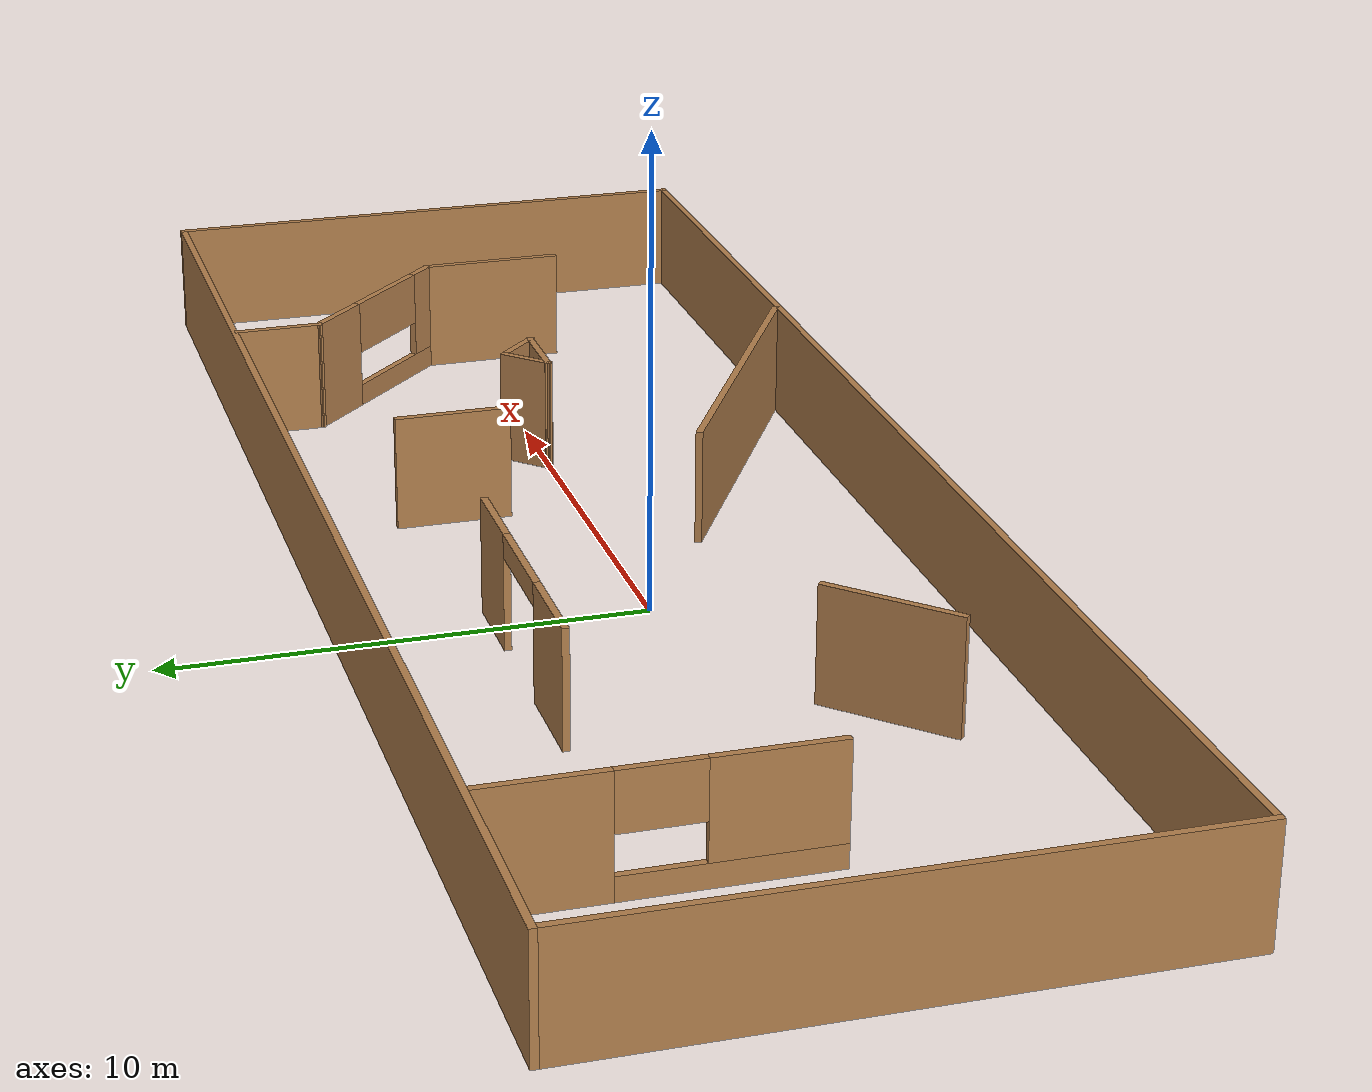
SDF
<?xml version='1.0'?>
<sdf version='1.7'>
  <model name='mapa_02'>
    <pose>1.95135 0.172168 0 0 -0 0</pose>
    <link name='Wall_10'>
      <collision name='Wall_10_Collision'>
        <geometry>
          <box>
            <size>34.5 0.15 2.5</size>
          </box>
        </geometry>
        <pose>0 0 1.25 0 -0 0</pose>
      </collision>
      <visual name='Wall_10_Visual'>
        <pose>0 0 1.25 0 -0 0</pose>
        <geometry>
          <box>
            <size>34.5 0.15 2.5</size>
          </box>
        </geometry>
        <material>
          <script>
            <uri>file://media/materials/scripts/gazebo.material</uri>
            <name>Gazebo/Wood</name>
          </script>
          <ambient>1 1 1 1</ambient>
        </material>
        <meta>
          <layer>0</layer>
        </meta>
      </visual>
      <pose>-0 6.175 0 0 -0 3.14159</pose>
    </link>
    <link name='Wall_11'>
      <collision name='Wall_11_Collision'>
        <geometry>
          <box>
            <size>12.5 0.15 2.5</size>
          </box>
        </geometry>
        <pose>0 0 1.25 0 -0 0</pose>
      </collision>
      <visual name='Wall_11_Visual'>
        <pose>0 0 1.25 0 -0 0</pose>
        <geometry>
          <box>
            <size>12.5 0.15 2.5</size>
          </box>
        </geometry>
        <material>
          <script>
            <uri>file://media/materials/scripts/gazebo.material</uri>
            <name>Gazebo/Wood</name>
          </script>
          <ambient>1 1 1 1</ambient>
        </material>
        <meta>
          <layer>0</layer>
        </meta>
      </visual>
      <pose>-17.175 -0 0 0 -0 -1.5708</pose>
    </link>
    <link name='Wall_13'>
      <pose>-12.7062 2.84089 0 0 -0 -1.5708</pose>
      <visual name='Wall_13_Visual_0'>
        <pose>-2.08779 0 1.25 0 -0 0</pose>
        <geometry>
          <box>
            <size>2.57442 0.15 2.5</size>
          </box>
        </geometry>
        <material>
          <script>
            <uri>file://media/materials/scripts/gazebo.material</uri>
            <name>Gazebo/Wood</name>
          </script>
          <ambient>1 1 1 1</ambient>
        </material>
        <meta>
          <layer>0</layer>
        </meta>
      </visual>
      <collision name='Wall_13_Collision_0'>
        <geometry>
          <box>
            <size>2.57442 0.15 2.5</size>
          </box>
        </geometry>
        <pose>-2.08779 0 1.25 0 -0 0</pose>
      </collision>
      <visual name='Wall_13_Visual_1'>
        <pose>1.28721 0 0.25 0 -0 0</pose>
        <geometry>
          <box>
            <size>4.17558 0.15 0.5</size>
          </box>
        </geometry>
        <material>
          <script>
            <uri>file://media/materials/scripts/gazebo.material</uri>
            <name>Gazebo/Wood</name>
          </script>
          <ambient>1 1 1 1</ambient>
        </material>
        <meta>
          <layer>0</layer>
        </meta>
      </visual>
      <collision name='Wall_13_Collision_1'>
        <geometry>
          <box>
            <size>4.17558 0.15 0.5</size>
          </box>
        </geometry>
        <pose>1.28721 0 0.25 0 -0 0</pose>
      </collision>
      <visual name='Wall_13_Visual_2'>
        <pose>2.11281 0 1.5 0 -0 0</pose>
        <geometry>
          <box>
            <size>2.52437 0.15 2</size>
          </box>
        </geometry>
        <material>
          <script>
            <uri>file://media/materials/scripts/gazebo.material</uri>
            <name>Gazebo/Wood</name>
          </script>
          <ambient>1 1 1 1</ambient>
        </material>
        <meta>
          <layer>0</layer>
        </meta>
      </visual>
      <collision name='Wall_13_Collision_2'>
        <geometry>
          <box>
            <size>2.52437 0.15 2</size>
          </box>
        </geometry>
        <pose>2.11281 0 1.5 0 -0 0</pose>
      </collision>
      <visual name='Wall_13_Visual_3'>
        <pose>0.025025 0 1.9 0 -0 0</pose>
        <geometry>
          <box>
            <size>1.65121 0.15 1.2</size>
          </box>
        </geometry>
        <material>
          <script>
            <uri>file://media/materials/scripts/gazebo.material</uri>
            <name>Gazebo/Wood</name>
          </script>
          <ambient>1 1 1 1</ambient>
        </material>
        <meta>
          <layer>0</layer>
        </meta>
      </visual>
      <collision name='Wall_13_Collision_3'>
        <geometry>
          <box>
            <size>1.65121 0.15 1.2</size>
          </box>
        </geometry>
        <pose>0.025025 0 1.9 0 -0 0</pose>
      </collision>
    </link>
    <link name='Wall_15'>
      <pose>-4.20313 3.00207 0 0 -0 0</pose>
      <visual name='Wall_15_Visual_0'>
        <pose>-2.08224 0 1.25 0 -0 0</pose>
        <geometry>
          <box>
            <size>2.08552 0.15 2.5</size>
          </box>
        </geometry>
        <material>
          <script>
            <uri>file://media/materials/scripts/gazebo.material</uri>
            <name>Gazebo/Wood</name>
          </script>
          <ambient>1 1 1 1</ambient>
        </material>
        <meta>
          <layer>0</layer>
        </meta>
      </visual>
      <collision name='Wall_15_Collision_0'>
        <geometry>
          <box>
            <size>2.08552 0.15 2.5</size>
          </box>
        </geometry>
        <pose>-2.08224 0 1.25 0 -0 0</pose>
      </collision>
      <visual name='Wall_15_Visual_1'>
        <pose>2.19766 0 1.25 0 -0 0</pose>
        <geometry>
          <box>
            <size>1.85467 0.15 2.5</size>
          </box>
        </geometry>
        <material>
          <script>
            <uri>file://media/materials/scripts/gazebo.material</uri>
            <name>Gazebo/Wood</name>
          </script>
          <ambient>1 1 1 1</ambient>
        </material>
        <meta>
          <layer>0</layer>
        </meta>
      </visual>
      <collision name='Wall_15_Collision_1'>
        <geometry>
          <box>
            <size>1.85467 0.15 2.5</size>
          </box>
        </geometry>
        <pose>2.19766 0 1.25 0 -0 0</pose>
      </collision>
      <visual name='Wall_15_Visual_2'>
        <pose>0.115424 0 2.25 0 -0 0</pose>
        <geometry>
          <box>
            <size>2.30981 0.15 0.5</size>
          </box>
        </geometry>
        <material>
          <script>
            <uri>file://media/materials/scripts/gazebo.material</uri>
            <name>Gazebo/Wood</name>
          </script>
          <ambient>1 1 1 1</ambient>
        </material>
        <meta>
          <layer>0</layer>
        </meta>
      </visual>
      <collision name='Wall_15_Collision_2'>
        <geometry>
          <box>
            <size>2.30981 0.15 0.5</size>
          </box>
        </geometry>
        <pose>0.115424 0 2.25 0 -0 0</pose>
      </collision>
    </link>
    <link name='Wall_17'>
      <collision name='Wall_17_Collision'>
        <geometry>
          <box>
            <size>3 0.15 2.5</size>
          </box>
        </geometry>
        <pose>0 0 1.25 0 -0 0</pose>
      </collision>
      <visual name='Wall_17_Visual'>
        <pose>0 0 1.25 0 -0 0</pose>
        <geometry>
          <box>
            <size>3 0.15 2.5</size>
          </box>
        </geometry>
        <material>
          <script>
            <uri>file://media/materials/scripts/gazebo.material</uri>
            <name>Gazebo/Wood</name>
          </script>
          <ambient>1 1 1 1</ambient>
        </material>
        <meta>
          <layer>0</layer>
        </meta>
      </visual>
      <pose>-7.76171 -3.11916 0 0 -0 0.785398</pose>
    </link>
    <link name='Wall_19'>
      <collision name='Wall_19_Collision'>
        <geometry>
          <box>
            <size>1.25 0.15 2.5</size>
          </box>
        </geometry>
        <pose>0 0 1.25 0 -0 0</pose>
      </collision>
      <visual name='Wall_19_Visual'>
        <pose>0 0 1.25 0 -0 0</pose>
        <geometry>
          <box>
            <size>1.25 0.15 2.5</size>
          </box>
        </geometry>
        <material>
          <script>
            <uri>file://media/materials/scripts/gazebo.material</uri>
            <name>Gazebo/Wood</name>
          </script>
          <ambient>1 1 1 1</ambient>
        </material>
        <meta>
          <layer>0</layer>
        </meta>
      </visual>
      <pose>6.27628 0.252154 0 0 -0 0.785398</pose>
    </link>
    <link name='Wall_22'>
      <collision name='Wall_22_Collision'>
        <geometry>
          <box>
            <size>1.25 0.15 2.5</size>
          </box>
        </geometry>
        <pose>0 0 1.25 0 -0 0</pose>
      </collision>
      <visual name='Wall_22_Visual'>
        <pose>0 0 1.25 0 -0 0</pose>
        <geometry>
          <box>
            <size>1.25 0.15 2.5</size>
          </box>
        </geometry>
        <material>
          <script>
            <uri>file://media/materials/scripts/gazebo.material</uri>
            <name>Gazebo/Wood</name>
          </script>
          <ambient>1 1 1 1</ambient>
        </material>
        <meta>
          <layer>0</layer>
        </meta>
      </visual>
      <pose>7.0541 0.252154 0 0 -0 -0.785398</pose>
    </link>
    <link name='Wall_23'>
      <collision name='Wall_23_Collision'>
        <geometry>
          <box>
            <size>1.70564 0.15 2.5</size>
          </box>
        </geometry>
        <pose>0 0 1.25 0 -0 0</pose>
      </collision>
      <visual name='Wall_23_Visual'>
        <pose>0 0 1.25 0 -0 0</pose>
        <geometry>
          <box>
            <size>1.70564 0.15 2.5</size>
          </box>
        </geometry>
        <material>
          <script>
            <uri>file://media/materials/scripts/gazebo.material</uri>
            <name>Gazebo/Wood</name>
          </script>
          <ambient>1 1 1 1</ambient>
        </material>
        <meta>
          <layer>0</layer>
        </meta>
      </visual>
      <pose>6.66519 -0.136755 0 0 -0 3.14159</pose>
    </link>
    <link name='Wall_25'>
      <pose>11.2909 2.62593 0 0 -0 -0.785398</pose>
      <visual name='Wall_25_Visual_0'>
        <pose>-1.55002 0 1.25 0 -0 0</pose>
        <geometry>
          <box>
            <size>1.64996 0.15 2.5</size>
          </box>
        </geometry>
        <material>
          <script>
            <uri>file://media/materials/scripts/gazebo.material</uri>
            <name>Gazebo/Wood</name>
          </script>
          <ambient>1 1 1 1</ambient>
        </material>
        <meta>
          <layer>0</layer>
        </meta>
      </visual>
      <collision name='Wall_25_Collision_0'>
        <geometry>
          <box>
            <size>1.64996 0.15 2.5</size>
          </box>
        </geometry>
        <pose>-1.55002 0 1.25 0 -0 0</pose>
      </collision>
      <visual name='Wall_25_Visual_1'>
        <pose>0.824982 0 0.25 0 -0 0</pose>
        <geometry>
          <box>
            <size>3.10004 0.15 0.5</size>
          </box>
        </geometry>
        <material>
          <script>
            <uri>file://media/materials/scripts/gazebo.material</uri>
            <name>Gazebo/Wood</name>
          </script>
          <ambient>1 1 1 1</ambient>
        </material>
        <meta>
          <layer>0</layer>
        </meta>
      </visual>
      <collision name='Wall_25_Collision_1'>
        <geometry>
          <box>
            <size>3.10004 0.15 0.5</size>
          </box>
        </geometry>
        <pose>0.824982 0 0.25 0 -0 0</pose>
      </collision>
      <visual name='Wall_25_Visual_2'>
        <pose>1.99616 0 1.5 0 -0 0</pose>
        <geometry>
          <box>
            <size>0.757683 0.15 2</size>
          </box>
        </geometry>
        <material>
          <script>
            <uri>file://media/materials/scripts/gazebo.material</uri>
            <name>Gazebo/Wood</name>
          </script>
          <ambient>1 1 1 1</ambient>
        </material>
        <meta>
          <layer>0</layer>
        </meta>
      </visual>
      <collision name='Wall_25_Collision_2'>
        <geometry>
          <box>
            <size>0.757683 0.15 2</size>
          </box>
        </geometry>
        <pose>1.99616 0 1.5 0 -0 0</pose>
      </collision>
      <visual name='Wall_25_Visual_3'>
        <pose>0.44614 0 1.9 0 -0 0</pose>
        <geometry>
          <box>
            <size>2.34235 0.15 1.2</size>
          </box>
        </geometry>
        <material>
          <script>
            <uri>file://media/materials/scripts/gazebo.material</uri>
            <name>Gazebo/Wood</name>
          </script>
          <ambient>1 1 1 1</ambient>
        </material>
        <meta>
          <layer>0</layer>
        </meta>
      </visual>
      <collision name='Wall_25_Collision_3'>
        <geometry>
          <box>
            <size>2.34235 0.15 1.2</size>
          </box>
        </geometry>
        <pose>0.44614 0 1.9 0 -0 0</pose>
      </collision>
    </link>
    <link name='Wall_26'>
      <collision name='Wall_26_Collision'>
        <geometry>
          <box>
            <size>3.25 0.15 2.5</size>
          </box>
        </geometry>
        <pose>0 0 1.25 0 -0 0</pose>
      </collision>
      <visual name='Wall_26_Visual'>
        <pose>0 0 1.25 0 -0 0</pose>
        <geometry>
          <box>
            <size>3.25 0.15 2.5</size>
          </box>
        </geometry>
        <material>
          <script>
            <uri>file://media/materials/scripts/gazebo.material</uri>
            <name>Gazebo/Wood</name>
          </script>
          <ambient>1 1 1 1</ambient>
        </material>
        <meta>
          <layer>0</layer>
        </meta>
      </visual>
      <pose>12.9173 -0.550413 0 0 -0 -1.5708</pose>
    </link>
    <link name='Wall_28'>
      <collision name='Wall_28_Collision'>
        <geometry>
          <box>
            <size>8 0.15 2.5</size>
          </box>
        </geometry>
        <pose>0 0 1.25 0 -0 0</pose>
      </collision>
      <visual name='Wall_28_Visual'>
        <pose>0 0 1.25 0 -0 0</pose>
        <geometry>
          <box>
            <size>8 0.15 2.5</size>
          </box>
        </geometry>
        <material>
          <script>
            <uri>file://media/materials/scripts/gazebo.material</uri>
            <name>Gazebo/Wood</name>
          </script>
          <ambient>1 1 1 1</ambient>
        </material>
        <meta>
          <layer>0</layer>
        </meta>
      </visual>
      <pose>4.49849 -4.12087 0 0 -0 -0.523599</pose>
    </link>
    <link name='Wall_30'>
      <collision name='Wall_30_Collision'>
        <geometry>
          <box>
            <size>2 0.15 2.5</size>
          </box>
        </geometry>
        <pose>0 0 1.25 0 -0 0</pose>
      </collision>
      <visual name='Wall_30_Visual'>
        <pose>0 0 1.25 0 -0 0</pose>
        <geometry>
          <box>
            <size>2 0.15 2.5</size>
          </box>
        </geometry>
        <material>
          <script>
            <uri>file://media/materials/scripts/gazebo.material</uri>
            <name>Gazebo/Wood</name>
          </script>
          <ambient>1 1 1 1</ambient>
        </material>
        <meta>
          <layer>0</layer>
        </meta>
      </visual>
      <pose>9.6646 5.17728 0 0 -0 1.5708</pose>
    </link>
    <link name='Wall_32'>
      <collision name='Wall_32_Collision'>
        <geometry>
          <box>
            <size>2.5 0.15 2.5</size>
          </box>
        </geometry>
        <pose>0 0 1.25 0 -0 0</pose>
      </collision>
      <visual name='Wall_32_Visual'>
        <pose>0 0 1.25 0 -0 0</pose>
        <geometry>
          <box>
            <size>2.5 0.15 2.5</size>
          </box>
        </geometry>
        <material>
          <script>
            <uri>file://media/materials/scripts/gazebo.material</uri>
            <name>Gazebo/Wood</name>
          </script>
          <ambient>1 1 1 1</ambient>
        </material>
        <meta>
          <layer>0</layer>
        </meta>
      </visual>
      <pose>3.51995 2.57187 0 0 -0 -1.5708</pose>
    </link>
    <link name='Wall_7'>
      <collision name='Wall_7_Collision'>
        <geometry>
          <box>
            <size>34.5 0.15 2.5</size>
          </box>
        </geometry>
        <pose>0 0 1.25 0 -0 0</pose>
      </collision>
      <visual name='Wall_7_Visual'>
        <pose>0 0 1.25 0 -0 0</pose>
        <geometry>
          <box>
            <size>34.5 0.15 2.5</size>
          </box>
        </geometry>
        <material>
          <script>
            <uri>file://media/materials/scripts/gazebo.material</uri>
            <name>Gazebo/Wood</name>
          </script>
          <ambient>1 1 1 1</ambient>
        </material>
        <meta>
          <layer>0</layer>
        </meta>
      </visual>
      <pose>-0 -6.175 0 0 -0 0</pose>
    </link>
    <link name='Wall_8'>
      <collision name='Wall_8_Collision'>
        <geometry>
          <box>
            <size>12.5 0.15 2.5</size>
          </box>
        </geometry>
        <pose>0 0 1.25 0 -0 0</pose>
      </collision>
      <visual name='Wall_8_Visual'>
        <pose>0 0 1.25 0 -0 0</pose>
        <geometry>
          <box>
            <size>12.5 0.15 2.5</size>
          </box>
        </geometry>
        <material>
          <script>
            <uri>file://media/materials/scripts/gazebo.material</uri>
            <name>Gazebo/Wood</name>
          </script>
          <ambient>1 1 1 1</ambient>
        </material>
        <meta>
          <layer>0</layer>
        </meta>
      </visual>
      <pose>17.175 -0 0 0 -0 1.5708</pose>
    </link>
    <static>1</static>
  </model>
</sdf>
